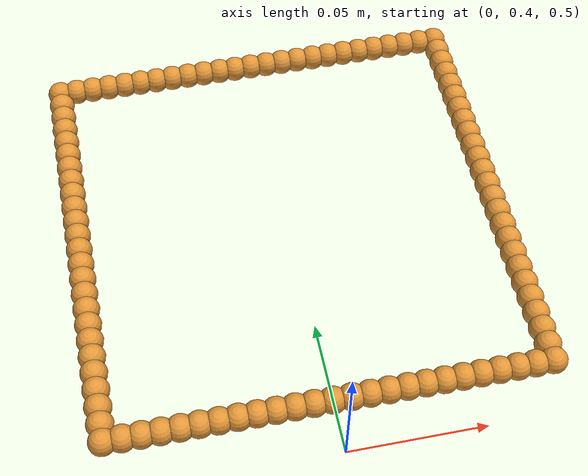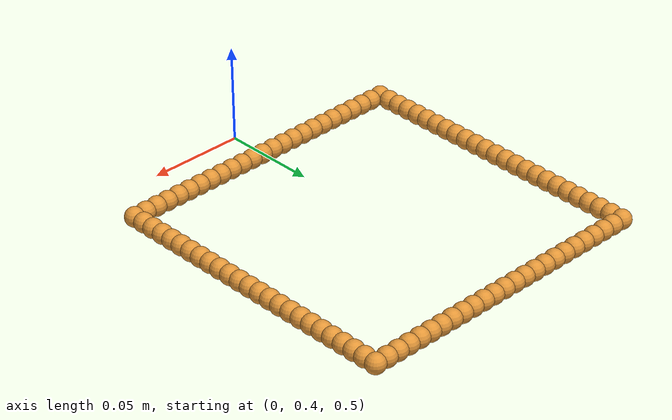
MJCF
<mujoco>
  <worldbody>

    <body name="square" pos="0.00 0.50 0.50">
          <joint name="square_freejoint" type="free"/>

      <inertial pos="0 0 0" mass="0.1" diaginertia="0.000213 0.000213 0.000425"/>
    <!-- 由100个球体组成的空心正方形边框 -->
    <body name="square_frame" pos="0 0 0.0">
      <!-- 正方形边长: 0.16米 -->
      <!-- 球体半径: 0.005米 -->
      <!-- 每条边25个球体，4条边共100个球体 -->

      <!-- bottom边 (25个球体) -->
      <geom name="bottom_00" type="sphere" size="0.005" pos="-0.0800 -0.0800 0" rgba="0.89 0.59 0.22 1"/>
      <geom name="bottom_01" type="sphere" size="0.005" pos="-0.0733 -0.0800 0" rgba="0.89 0.59 0.22 1"/>
      <geom name="bottom_02" type="sphere" size="0.005" pos="-0.0667 -0.0800 0" rgba="0.89 0.59 0.22 1"/>
      <geom name="bottom_03" type="sphere" size="0.005" pos="-0.0600 -0.0800 0" rgba="0.89 0.59 0.22 1"/>
      <geom name="bottom_04" type="sphere" size="0.005" pos="-0.0533 -0.0800 0" rgba="0.89 0.59 0.22 1"/>
      <geom name="bottom_05" type="sphere" size="0.005" pos="-0.0467 -0.0800 0" rgba="0.89 0.59 0.22 1"/>
      <geom name="bottom_06" type="sphere" size="0.005" pos="-0.0400 -0.0800 0" rgba="0.89 0.59 0.22 1"/>
      <geom name="bottom_07" type="sphere" size="0.005" pos="-0.0333 -0.0800 0" rgba="0.89 0.59 0.22 1"/>
      <geom name="bottom_08" type="sphere" size="0.005" pos="-0.0267 -0.0800 0" rgba="0.89 0.59 0.22 1"/>
      <geom name="bottom_09" type="sphere" size="0.005" pos="-0.0200 -0.0800 0" rgba="0.89 0.59 0.22 1"/>
      <geom name="bottom_10" type="sphere" size="0.005" pos="-0.0133 -0.0800 0" rgba="0.89 0.59 0.22 1"/>
      <geom name="bottom_11" type="sphere" size="0.005" pos="-0.0067 -0.0800 0" rgba="0.89 0.59 0.22 1"/>
      <geom name="bottom_12" type="sphere" size="0.005" pos="0.0000 -0.0800 0" rgba="0.89 0.59 0.22 1"/>
      <geom name="bottom_13" type="sphere" size="0.005" pos="0.0067 -0.0800 0" rgba="0.89 0.59 0.22 1"/>
      <geom name="bottom_14" type="sphere" size="0.005" pos="0.0133 -0.0800 0" rgba="0.89 0.59 0.22 1"/>
      <geom name="bottom_15" type="sphere" size="0.005" pos="0.0200 -0.0800 0" rgba="0.89 0.59 0.22 1"/>
      <geom name="bottom_16" type="sphere" size="0.005" pos="0.0267 -0.0800 0" rgba="0.89 0.59 0.22 1"/>
      <geom name="bottom_17" type="sphere" size="0.005" pos="0.0333 -0.0800 0" rgba="0.89 0.59 0.22 1"/>
      <geom name="bottom_18" type="sphere" size="0.005" pos="0.0400 -0.0800 0" rgba="0.89 0.59 0.22 1"/>
      <geom name="bottom_19" type="sphere" size="0.005" pos="0.0467 -0.0800 0" rgba="0.89 0.59 0.22 1"/>
      <geom name="bottom_20" type="sphere" size="0.005" pos="0.0533 -0.0800 0" rgba="0.89 0.59 0.22 1"/>
      <geom name="bottom_21" type="sphere" size="0.005" pos="0.0600 -0.0800 0" rgba="0.89 0.59 0.22 1"/>
      <geom name="bottom_22" type="sphere" size="0.005" pos="0.0667 -0.0800 0" rgba="0.89 0.59 0.22 1"/>
      <geom name="bottom_23" type="sphere" size="0.005" pos="0.0733 -0.0800 0" rgba="0.89 0.59 0.22 1"/>
      <geom name="bottom_24" type="sphere" size="0.005" pos="0.0800 -0.0800 0" rgba="0.89 0.59 0.22 1"/>

      <!-- right边 (25个球体) -->
      <geom name="right_00" type="sphere" size="0.005" pos="0.0800 -0.0800 0" rgba="0.89 0.59 0.22 1"/>
      <geom name="right_01" type="sphere" size="0.005" pos="0.0800 -0.0733 0" rgba="0.89 0.59 0.22 1"/>
      <geom name="right_02" type="sphere" size="0.005" pos="0.0800 -0.0667 0" rgba="0.89 0.59 0.22 1"/>
      <geom name="right_03" type="sphere" size="0.005" pos="0.0800 -0.0600 0" rgba="0.89 0.59 0.22 1"/>
      <geom name="right_04" type="sphere" size="0.005" pos="0.0800 -0.0533 0" rgba="0.89 0.59 0.22 1"/>
      <geom name="right_05" type="sphere" size="0.005" pos="0.0800 -0.0467 0" rgba="0.89 0.59 0.22 1"/>
      <geom name="right_06" type="sphere" size="0.005" pos="0.0800 -0.0400 0" rgba="0.89 0.59 0.22 1"/>
      <geom name="right_07" type="sphere" size="0.005" pos="0.0800 -0.0333 0" rgba="0.89 0.59 0.22 1"/>
      <geom name="right_08" type="sphere" size="0.005" pos="0.0800 -0.0267 0" rgba="0.89 0.59 0.22 1"/>
      <geom name="right_09" type="sphere" size="0.005" pos="0.0800 -0.0200 0" rgba="0.89 0.59 0.22 1"/>
      <geom name="right_10" type="sphere" size="0.005" pos="0.0800 -0.0133 0" rgba="0.89 0.59 0.22 1"/>
      <geom name="right_11" type="sphere" size="0.005" pos="0.0800 -0.0067 0" rgba="0.89 0.59 0.22 1"/>
      <geom name="right_12" type="sphere" size="0.005" pos="0.0800 0.0000 0" rgba="0.89 0.59 0.22 1"/>
      <geom name="right_13" type="sphere" size="0.005" pos="0.0800 0.0067 0" rgba="0.89 0.59 0.22 1"/>
      <geom name="right_14" type="sphere" size="0.005" pos="0.0800 0.0133 0" rgba="0.89 0.59 0.22 1"/>
      <geom name="right_15" type="sphere" size="0.005" pos="0.0800 0.0200 0" rgba="0.89 0.59 0.22 1"/>
      <geom name="right_16" type="sphere" size="0.005" pos="0.0800 0.0267 0" rgba="0.89 0.59 0.22 1"/>
      <geom name="right_17" type="sphere" size="0.005" pos="0.0800 0.0333 0" rgba="0.89 0.59 0.22 1"/>
      <geom name="right_18" type="sphere" size="0.005" pos="0.0800 0.0400 0" rgba="0.89 0.59 0.22 1"/>
      <geom name="right_19" type="sphere" size="0.005" pos="0.0800 0.0467 0" rgba="0.89 0.59 0.22 1"/>
      <geom name="right_20" type="sphere" size="0.005" pos="0.0800 0.0533 0" rgba="0.89 0.59 0.22 1"/>
      <geom name="right_21" type="sphere" size="0.005" pos="0.0800 0.0600 0" rgba="0.89 0.59 0.22 1"/>
      <geom name="right_22" type="sphere" size="0.005" pos="0.0800 0.0667 0" rgba="0.89 0.59 0.22 1"/>
      <geom name="right_23" type="sphere" size="0.005" pos="0.0800 0.0733 0" rgba="0.89 0.59 0.22 1"/>
      <geom name="right_24" type="sphere" size="0.005" pos="0.0800 0.0800 0" rgba="0.89 0.59 0.22 1"/>

      <!-- top边 (25个球体) -->
      <geom name="top_00" type="sphere" size="0.005" pos="0.0800 0.0800 0" rgba="0.89 0.59 0.22 1"/>
      <geom name="top_01" type="sphere" size="0.005" pos="0.0733 0.0800 0" rgba="0.89 0.59 0.22 1"/>
      <geom name="top_02" type="sphere" size="0.005" pos="0.0667 0.0800 0" rgba="0.89 0.59 0.22 1"/>
      <geom name="top_03" type="sphere" size="0.005" pos="0.0600 0.0800 0" rgba="0.89 0.59 0.22 1"/>
      <geom name="top_04" type="sphere" size="0.005" pos="0.0533 0.0800 0" rgba="0.89 0.59 0.22 1"/>
      <geom name="top_05" type="sphere" size="0.005" pos="0.0467 0.0800 0" rgba="0.89 0.59 0.22 1"/>
      <geom name="top_06" type="sphere" size="0.005" pos="0.0400 0.0800 0" rgba="0.89 0.59 0.22 1"/>
      <geom name="top_07" type="sphere" size="0.005" pos="0.0333 0.0800 0" rgba="0.89 0.59 0.22 1"/>
      <geom name="top_08" type="sphere" size="0.005" pos="0.0267 0.0800 0" rgba="0.89 0.59 0.22 1"/>
      <geom name="top_09" type="sphere" size="0.005" pos="0.0200 0.0800 0" rgba="0.89 0.59 0.22 1"/>
      <geom name="top_10" type="sphere" size="0.005" pos="0.0133 0.0800 0" rgba="0.89 0.59 0.22 1"/>
      <geom name="top_11" type="sphere" size="0.005" pos="0.0067 0.0800 0" rgba="0.89 0.59 0.22 1"/>
      <geom name="top_12" type="sphere" size="0.005" pos="0.0000 0.0800 0" rgba="0.89 0.59 0.22 1"/>
      <geom name="top_13" type="sphere" size="0.005" pos="-0.0067 0.0800 0" rgba="0.89 0.59 0.22 1"/>
      <geom name="top_14" type="sphere" size="0.005" pos="-0.0133 0.0800 0" rgba="0.89 0.59 0.22 1"/>
      <geom name="top_15" type="sphere" size="0.005" pos="-0.0200 0.0800 0" rgba="0.89 0.59 0.22 1"/>
      <geom name="top_16" type="sphere" size="0.005" pos="-0.0267 0.0800 0" rgba="0.89 0.59 0.22 1"/>
      <geom name="top_17" type="sphere" size="0.005" pos="-0.0333 0.0800 0" rgba="0.89 0.59 0.22 1"/>
      <geom name="top_18" type="sphere" size="0.005" pos="-0.0400 0.0800 0" rgba="0.89 0.59 0.22 1"/>
      <geom name="top_19" type="sphere" size="0.005" pos="-0.0467 0.0800 0" rgba="0.89 0.59 0.22 1"/>
      <geom name="top_20" type="sphere" size="0.005" pos="-0.0533 0.0800 0" rgba="0.89 0.59 0.22 1"/>
      <geom name="top_21" type="sphere" size="0.005" pos="-0.0600 0.0800 0" rgba="0.89 0.59 0.22 1"/>
      <geom name="top_22" type="sphere" size="0.005" pos="-0.0667 0.0800 0" rgba="0.89 0.59 0.22 1"/>
      <geom name="top_23" type="sphere" size="0.005" pos="-0.0733 0.0800 0" rgba="0.89 0.59 0.22 1"/>
      <geom name="top_24" type="sphere" size="0.005" pos="-0.0800 0.0800 0" rgba="0.89 0.59 0.22 1"/>

      <!-- left边 (25个球体) -->
      <geom name="left_00" type="sphere" size="0.005" pos="-0.0800 0.0800 0" rgba="0.89 0.59 0.22 1"/>
      <geom name="left_01" type="sphere" size="0.005" pos="-0.0800 0.0733 0" rgba="0.89 0.59 0.22 1"/>
      <geom name="left_02" type="sphere" size="0.005" pos="-0.0800 0.0667 0" rgba="0.89 0.59 0.22 1"/>
      <geom name="left_03" type="sphere" size="0.005" pos="-0.0800 0.0600 0" rgba="0.89 0.59 0.22 1"/>
      <geom name="left_04" type="sphere" size="0.005" pos="-0.0800 0.0533 0" rgba="0.89 0.59 0.22 1"/>
      <geom name="left_05" type="sphere" size="0.005" pos="-0.0800 0.0467 0" rgba="0.89 0.59 0.22 1"/>
      <geom name="left_06" type="sphere" size="0.005" pos="-0.0800 0.0400 0" rgba="0.89 0.59 0.22 1"/>
      <geom name="left_07" type="sphere" size="0.005" pos="-0.0800 0.0333 0" rgba="0.89 0.59 0.22 1"/>
      <geom name="left_08" type="sphere" size="0.005" pos="-0.0800 0.0267 0" rgba="0.89 0.59 0.22 1"/>
      <geom name="left_09" type="sphere" size="0.005" pos="-0.0800 0.0200 0" rgba="0.89 0.59 0.22 1"/>
      <geom name="left_10" type="sphere" size="0.005" pos="-0.0800 0.0133 0" rgba="0.89 0.59 0.22 1"/>
      <geom name="left_11" type="sphere" size="0.005" pos="-0.0800 0.0067 0" rgba="0.89 0.59 0.22 1"/>
      <geom name="left_12" type="sphere" size="0.005" pos="-0.0800 0.0000 0" rgba="0.89 0.59 0.22 1"/>
      <geom name="left_13" type="sphere" size="0.005" pos="-0.0800 -0.0067 0" rgba="0.89 0.59 0.22 1"/>
      <geom name="left_14" type="sphere" size="0.005" pos="-0.0800 -0.0133 0" rgba="0.89 0.59 0.22 1"/>
      <geom name="left_15" type="sphere" size="0.005" pos="-0.0800 -0.0200 0" rgba="0.89 0.59 0.22 1"/>
      <geom name="left_16" type="sphere" size="0.005" pos="-0.0800 -0.0267 0" rgba="0.89 0.59 0.22 1"/>
      <geom name="left_17" type="sphere" size="0.005" pos="-0.0800 -0.0333 0" rgba="0.89 0.59 0.22 1"/>
      <geom name="left_18" type="sphere" size="0.005" pos="-0.0800 -0.0400 0" rgba="0.89 0.59 0.22 1"/>
      <geom name="left_19" type="sphere" size="0.005" pos="-0.0800 -0.0467 0" rgba="0.89 0.59 0.22 1"/>
      <geom name="left_20" type="sphere" size="0.005" pos="-0.0800 -0.0533 0" rgba="0.89 0.59 0.22 1"/>
      <geom name="left_21" type="sphere" size="0.005" pos="-0.0800 -0.0600 0" rgba="0.89 0.59 0.22 1"/>
      <geom name="left_22" type="sphere" size="0.005" pos="-0.0800 -0.0667 0" rgba="0.89 0.59 0.22 1"/>
      <geom name="left_23" type="sphere" size="0.005" pos="-0.0800 -0.0733 0" rgba="0.89 0.59 0.22 1"/>
      <geom name="left_24" type="sphere" size="0.005" pos="-0.0800 -0.0800 0" rgba="0.89 0.59 0.22 1"/>
</body>
    </body>
  </worldbody>
</mujoco>
